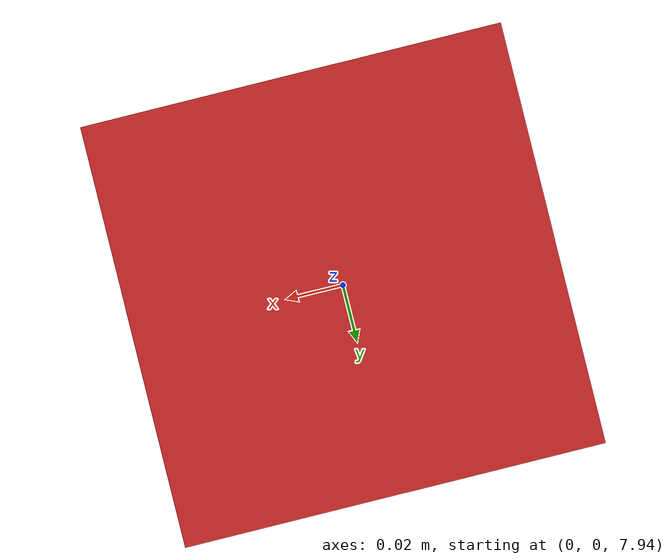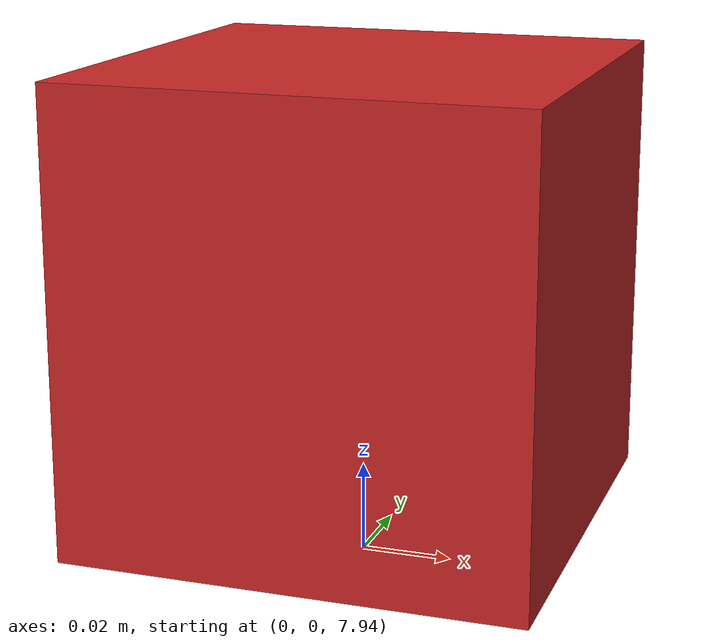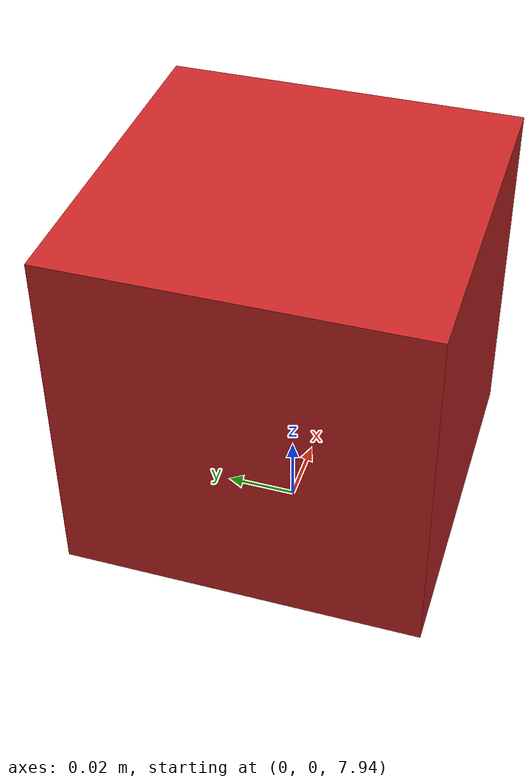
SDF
<sdf version="1.7">
 <world name="default">
  <light name="sun" type="directional">
   <pose>0 0 10 0 -0 0</pose>
   <diffuse>0.8 0.8 0.8 1</diffuse>
   <specular>0.2 0.2 0.2 1</specular>
   <attenuation>
    <range>1000</range>
    <constant>0.9</constant>
    <linear>0.01</linear>
    <quadratic>0.001</quadratic>
   </attenuation>
   <direction>-0.5 0.1 -0.9</direction>
   <spot><inner_angle>0</inner_angle><outer_angle>0</outer_angle><falloff>0</falloff></spot>
  </light>
  <model name="ground_plane">
   <static>1</static>
   <link name="link">
    <collision name="collision">
     <geometry><plane><normal>0 0 1</normal><size>100 100</size></plane></geometry>
     <surface>
      <contact><collide_bitmask>65535</collide_bitmask></contact>
      <friction><ode><mu>100</mu><mu2>50</mu2></ode></friction>
     </surface>
    </collision>
    <visual name="visual">
     <cast_shadows>0</cast_shadows>
     <geometry><plane><normal>0 0 1</normal><size>100 100</size></plane></geometry>
     <material>
      <script><uri>file://media/materials/scripts/gazebo.material</uri><name>Gazebo/Grey</name></script>
     </material>
    </visual>
   </link>
  </model>
  <gravity>0 0 -9.8</gravity>
  <magnetic_field>6e-06 2.3e-05 -4.2e-05</magnetic_field>
  <atmosphere type="adiabatic"/>
  <physics type="ode">
   <max_step_size>0.001</max_step_size>
   <real_time_factor>1</real_time_factor>
   <real_time_update_rate>1000</real_time_update_rate>
  </physics>
  <scene><ambient>0.4 0.4 0.4 1</ambient><background>0.7 0.7 0.7 1</background><shadows>1</shadows></scene>
  <audio><device>default</device></audio>
  <spherical_coordinates>
   <surface_model>EARTH_WGS84</surface_model>
   <latitude_deg>0</latitude_deg>
   <longitude_deg>0</longitude_deg>
   <elevation>0</elevation>
   <heading_deg>0</heading_deg>
  </spherical_coordinates>
  <include><pose>0 0 8 0 0 0</pose><uri>model://unit_camera</uri></include>
 </world>
</sdf>

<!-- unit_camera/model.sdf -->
<sdf version="1.6">
  <model name="camera">
    <link name="link">
      <gravity>0</gravity>
      <inertial>
        <mass>0.1</mass>
        <inertia>
          <ixx>0.001</ixx>
          <iyy>0.001</iyy>
          <izz>0.001</izz>
        </inertia>
      </inertial>
      <collision name="collision">
        <geometry>
          <box>
            <size>0.1 0.1 0.1</size>
          </box>
        </geometry>
      </collision>
      <visual name="visual">
        <geometry>
          <box>
            <size>0.1 0.1 0.1</size>
          </box>
        </geometry>
        <material>
          <script>
            <name>Gazebo/Red</name>
            <uri>file://media/materials/scripts/gazebo.material</uri>
          </script>
        </material>
      </visual>
      <sensor name="camera" type="camera">
        <always_on>true</always_on>
        <update_rate>30</update_rate>
        <camera name="camera">
          <horizontal_fov>1.047</horizontal_fov>
          <image>
            <width>1280</width>
            <height>720</height>
            <format>R8G8B8</format>
          </image>
          <clip>
            <near>0.1</near>
            <far>100</far>
          </clip>
          <noise>
            <type>gaussian</type>
            <mean>0</mean>
            <stddev>0.01</stddev>
          </noise>
        </camera>
        <plugin name="camera_controller" filename="libcamera_controller.so"/>
      </sensor>

      <sensor name="imu" type="imu">
        <always_on>true</always_on>
        <update_rate>100</update_rate>
        <imu>
          <noise>
            <type>gaussian</type>
            <rate>
              <mean>0</mean>
              <stddev>0.1</stddev>
            </rate>
            <accel>
              <mean>0</mean>
              <stddev>0.01</stddev>
            </accel>
          </noise>
        </imu>
      </sensor>
    </link>
  </model>
</sdf>
